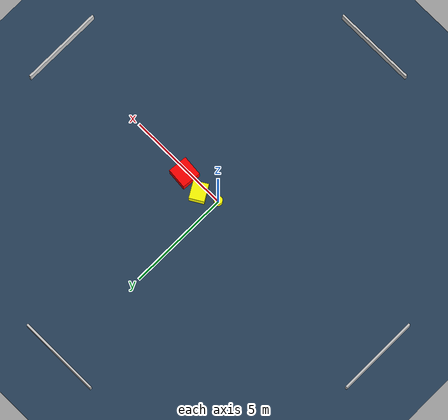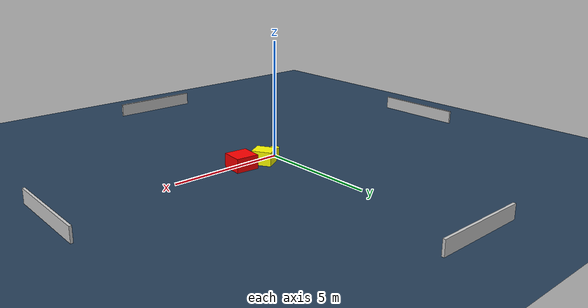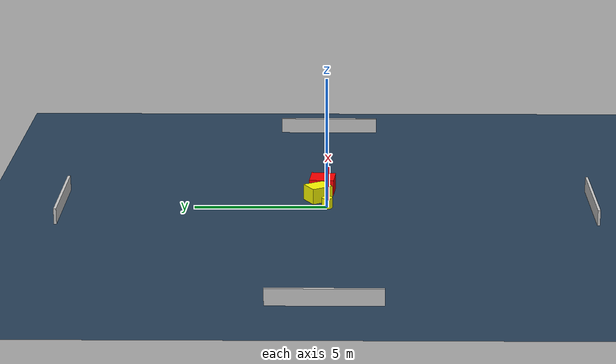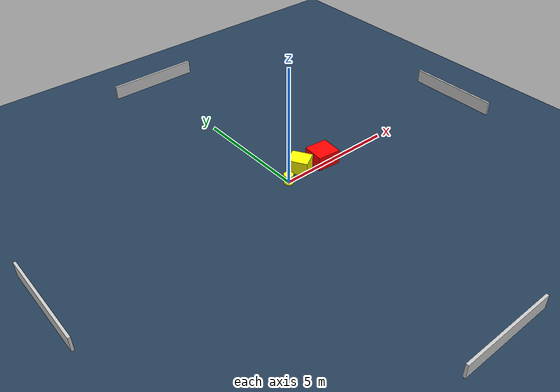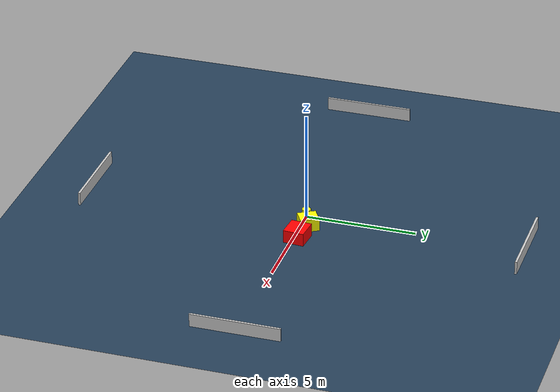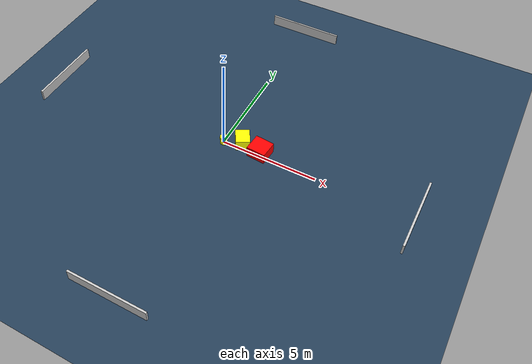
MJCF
<?xml version="1.0" ?>
<mujoco model="generated_environment">
  <option timestep="0.01" integrator="RK4" cone="elliptic"/>
  <default>
    <geom density="1"/>
  </default>
  <asset>
    <texture builtin="gradient" height="3072" name="skybox" rgb1="0.3 0.5 0.7" rgb2="0 0 0" type="skybox" width="512"/>
    <texture builtin="checker" height="300" name="groundplane" rgb1="0.2 0.3 0.4" rgb2="0.1 0.2 0.3" type="2d" width="300"/>
    <material name="groundplane" reflectance="0.2" texrepeat="5 5" texture="groundplane"/>
  </asset>
  <worldbody>
    <light dir="0 0 -1" directional="true" pos="0 0 1.5"/>
    <geom condim="3" friction="0.5 0.005 0.001" material="groundplane" name="floor" pos="0 0 0" size="0 0 0.05" type="plane"/>
    <body name="walls">
      <geom name="wall_1" condim="4" pos="-10.0 0.0 0.3" rgba="0.800000011920929 0.800000011920929 0.800000011920929 1.0" size="0.05 2.0 0.3" type="box"/>
      <geom name="wall_2" condim="4" pos="10.0 0.0 0.3" rgba="0.800000011920929 0.800000011920929 0.800000011920929 1.0" size="0.05 2.0 0.3" type="box"/>
      <geom name="wall_3" condim="4" pos="0.0 -10.0 0.3" rgba="0.800000011920929 0.800000011920929 0.800000011920929 1.0" size="2.0 0.05 0.3" type="box"/>
      <geom name="wall_4" condim="4" pos="0.0 10.0 0.3" rgba="0.800000011920929 0.800000011920929 0.800000011920929 1.0" size="2.0 0.05 0.3" type="box"/>
    </body>
    <body name="robot">
      <joint name="joint_x" type="slide" pos="0 0 0" axis="1 0 0"/>
      <joint name="joint_y" type="slide" pos="0 0 0" axis="0 1 0"/>
      <geom name="robot" type="cylinder" pos="0.0 0.0 0.2" size="0.2 0.2 0.0" mass="5.0" friction="1.0 0.005 0.0001" condim="4" rgba="1.0 1.0 0.0 1.0"/>
    </body>
    <body name="obstacle_1_movable">
      <geom name="obstacle_1_movable" condim="4" pos="0.8828805579260751 0.35020887516492866 0.3" euler="0 0 30.496380495905168" friction="0.0 0.005 0.001" rgba="1.0 1.0 0.0 1.0" size="0.3627010189612868 0.4242032644618409 0.3" type="box" mass="0.1"/>
      <joint type="free"/>
    </body>
    <body name="obstacle_2_static">
      <geom name="obstacle_2_static" condim="4" pos="1.9504952354693077 0.19238426817467028 0.3" euler="0 0 85.02120046782785" friction="0.0 0.005 0.001" rgba="1.0 0.0 0.0 1.0" size="0.4693869293503354 0.49592495615469306 0.3" type="box"/>
    </body>
  </worldbody>
  <actuator>
    <motor name="actuator_x" joint="joint_x" gear="1" ctrlrange="-1 1"/>
    <motor name="actuator_y" joint="joint_y" gear="1" ctrlrange="-1 1"/>
  </actuator>
</mujoco>
